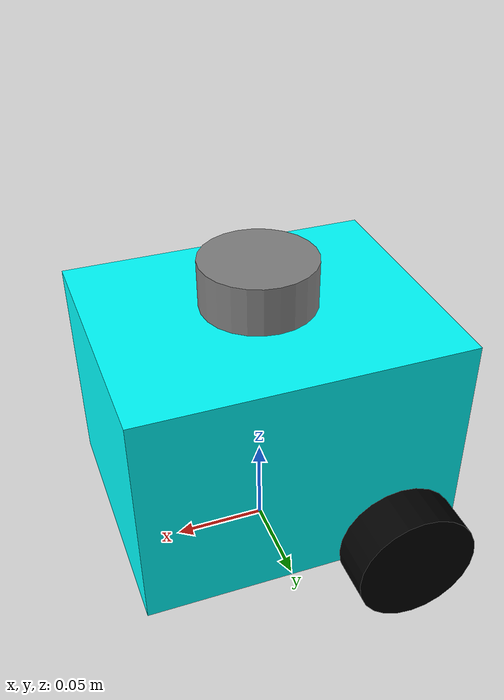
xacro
<?xml version="1.0" ?>
<robot name="hbot" xmlns:xacro="http://ros.org/wiki/xacro">

  <xacro:include filename="inertials.xacro" />
  <xacro:include filename="materials.xacro" />

  <!-- Define some constants -->
  <xacro:property name="base_width" value="0.14"/>
  <xacro:property name="base_height" value="0.12"/>
  <xacro:property name="base_length" value="0.17"/>

  <xacro:property name="wheel_radius" value="0.0325"/>
  <xacro:property name="wheel_width" value="0.025"/>
  <xacro:property name="wheel_ygap" value="0.015"/>
  <xacro:property name="wheel_zoff" value="0.05"/>
  <xacro:property name="wheel_xoff" value="0.05"/>

  <xacro:property name="caster_radius" value="0.01"/>
  <xacro:property name="caster_xoff" value="0.07"/>

  <link name="base_footprint"/>
  <joint name="base_joint" type="fixed">
    <parent link="base_footprint"/>
    <child link="base_link"/>
    <origin xyz="0 0 ${(wheel_radius+wheel_zoff)}" rpy="0 0 0"/>
  </joint>

  <link name="base_link">
    <visual>
      <geometry>
        <box size="${base_length} ${base_width} ${base_height}"/>
      </geometry>
      <material name="Cyan">
        <color rgba="0 1 1 1"/>
      </material>
    </visual>
    <collision>
      <geometry>
        <box size="${base_length} ${base_width} ${base_height}"/>
      </geometry>
    </collision>
    <xacro:solid_cuboid_inertial
      rpy="0 0 0" xyz="0 0 0" mass="0.5"
      x="${base_length}" y="${base_width}" z="${base_height}"
    />
  </link>

  <gazebo reference="base_link">
    <material>Gazebo/Green</material>
  </gazebo>

  <!-- Wheel -->
  <xacro:macro name="wheel" params="prefix x_reflect y_reflect">
    <link name="${prefix}_link">
      <visual>
        <origin xyz="0 0 0" rpy="${pi/2} 0 0"/>
        <geometry>
          <cylinder radius="${wheel_radius}" length="${wheel_width}"/>
          <cylinder radius="0.005" length="0.01">
            <origin xyz="0 0 ${wheel_width/2+0.005}" rpy="0 0 0"/>
          </cylinder>
        </geometry>
        <material name="Black">
          <color rgba="0 0 0 1"/>
        </material>
      </visual>
      <collision>
        <origin xyz="0 0 0" rpy="${pi/2} 0 0"/>
        <geometry>
          <cylinder radius="${wheel_radius}" length="${wheel_width}"/>
        </geometry>
      </collision>
      <xacro:solid_cylinder_inertial
        rpy="0 0 0"
        xyz="0 0 0"
        mass="0.1"
        radius="${wheel_radius}"
        length="${wheel_width}"
      />
    </link>

    <joint name="${prefix}_joint" type="continuous">
      <parent link="base_link"/>
      <child link="${prefix}_link"/>
      <origin xyz="${x_reflect*wheel_xoff} ${y_reflect*(base_width/2+wheel_ygap)} ${-wheel_zoff}" rpy="0 0 0"/>
      <axis xyz="0 1 0"/>
    </joint>

    <gazebo reference="${prefix}_link">
      <material>Gazebo/Black</material>
    </gazebo>
  </xacro:macro>

  <xacro:wheel prefix="left_wheel" x_reflect="-1" y_reflect="1"/>
  <xacro:wheel prefix="right_wheel" x_reflect="-1" y_reflect="-1"/>

  <!-- Caster -->
  <link name="front_caster">
    <visual>
      <geometry>
        <sphere radius="${caster_radius}"/>
      </geometry>
      <material name="Cyan">
        <color rgba="0 1.0 1.0 1.0"/>
      </material>
    </visual>
    <collision>
      <geometry>
        <sphere radius="${caster_radius}"/>
      </geometry>
    </collision>
    <xacro:null_inertial/>
  </link>

  <joint name="front_caster_joint" type="fixed">
    <parent link="base_link"/>
    <child link="front_caster"/>
    <origin xyz="${caster_xoff} 0.0 ${-wheel_zoff-wheel_radius+caster_radius}" rpy="0 0 0"/>
  </joint>

  <!-- Lidar -->
  <link name="laser">
    <visual>
      <geometry>
        <cylinder radius="0.03" length="0.025"/>
      </geometry>
      <material name="Gray">
        <color rgba="0.5 0.5 0.5 1"/>
      </material>
    </visual>
    <collision>
      <geometry>
        <cylinder radius="0.03" length="0.025"/>
      </geometry>
    </collision>
    <xacro:null_inertial/>
  </link>

  <joint name="lidar_joint" type="fixed">
    <parent link="base_link"/>
    <child link="laser"/>
    <origin xyz="0 0 ${base_height/2+0.015}" rpy="0 0 3.14"/>
  </joint>

  <gazebo reference="laser">
    <sensor name="lidar" type="ray">
      <always_on>true</always_on>
      <visualize>false</visualize>
      <update_rate>10</update_rate>
      <ray>
        <scan>
          <horizontal>
            <samples>360</samples>
            <resolution>1</resolution>
            <min_angle>-3.14</min_angle>
            <max_angle>3.14</max_angle>
          </horizontal>
        </scan>
        <range>
          <min>0.25</min>
          <max>6.0</max>
          <resolution>0.02</resolution>
        </range>
        <noise>
          <type>gaussian</type>
          <mean>0.0</mean>
          <stddev>0.01</stddev>
        </noise>
      </ray>
      <plugin name="scan" filename="libgazebo_ros_ray_sensor.so">
        <ros>
          <remapping>~/out:=scan</remapping>
        </ros>
        <output_type>sensor_msgs/LaserScan</output_type>
        <frame_name>laser</frame_name>
      </plugin>
    </sensor>
  </gazebo>
  <gazebo reference="laser">
    <material>Gazebo/Yellow</material>
  </gazebo>

  <gazebo>
    <plugin name="two_front_wheeled_diff_drive" filename="libgazebo_ros_diff_drive.so">
      <update_rate>30</update_rate>

      <left_joint>left_wheel_joint</left_joint>
      <right_joint>right_wheel_joint</right_joint>

      <wheel_separation>0.3</wheel_separation>
      <wheel_diameter>0.1</wheel_diameter>

      <max_wheel_torque>20</max_wheel_torque>
      <max_wheel_acceleration>1.0</max_wheel_acceleration>

      <command_topic>cmd_vel</command_topic>

      <publish_odom>true</publish_odom>

      <publish_odom_tf>true</publish_odom_tf>

      <publish_wheel_tf>true</publish_wheel_tf>

      <odometry_topic>odom</odometry_topic>
      <odometry_frame>odom</odometry_frame>
      <robot_base_frame>base_footprint</robot_base_frame>

      <odometry_source>1</odometry_source>
    </plugin>
  </gazebo>

</robot>
